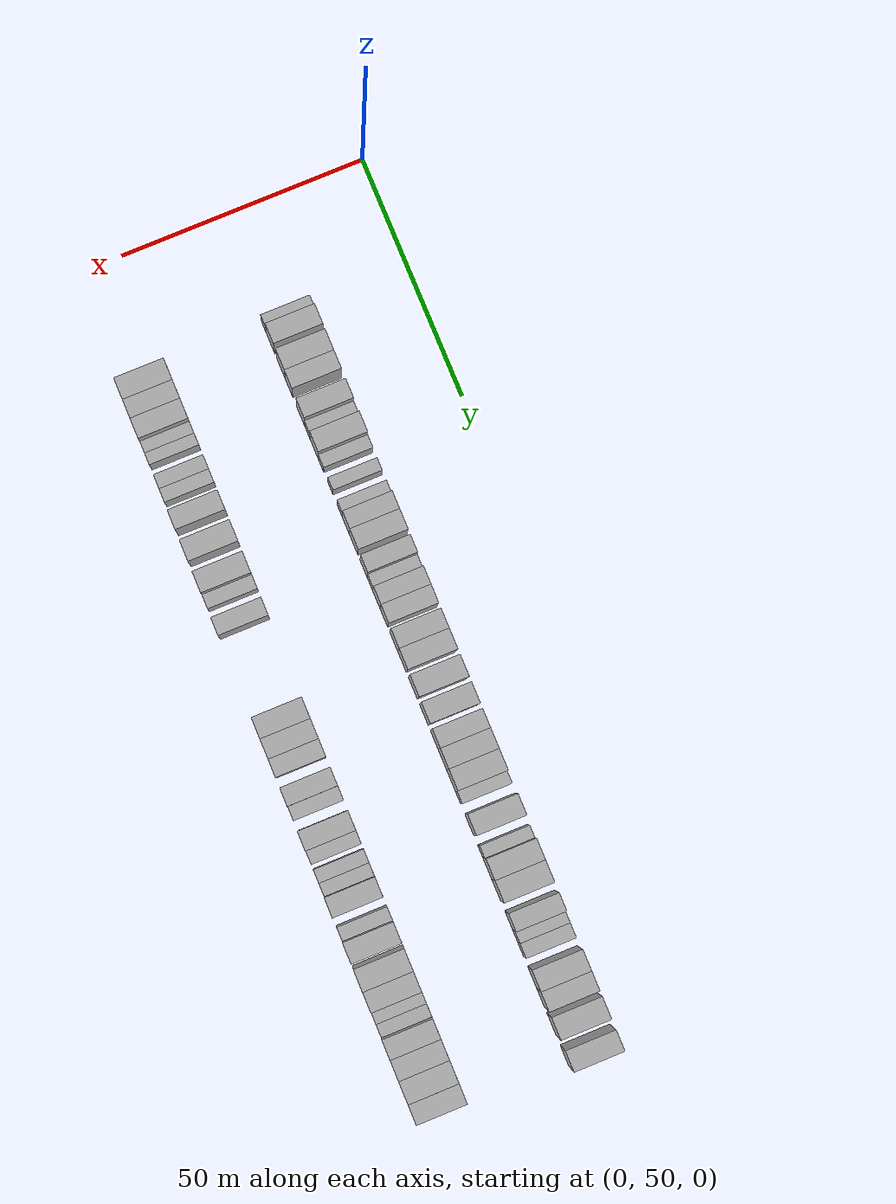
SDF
<sdf version="1.6">
 <world name="default">
  <model name="building_75">
   <static>1</static>
   <pose>25.0000 73.3830 0 0.000000 0.000000 0.000000</pose>
   <link name="link">
    <pose>0 0 3.00 0 0 0</pose>
    <collision name="collision"><geometry><box><size>10.0000 2.5653 6.0000</size></box></geometry></collision>
    <visual name="visual">
     <cast_shadows>0</cast_shadows>
     <geometry><box><size>10.0000 2.5653 6.0000</size></box></geometry>
     <material>
      <script>
       <uri>model://HANNAS_wall/materials/scripts</uri>
       <uri>model://HANNAS_wall/materials/textures</uri>
       <name>vrc/HANNAS_wall</name>
      </script>
     </material>
    </visual>
   </link>
  </model>
  <model name="building_76">
   <static>1</static>
   <pose>25.0000 76.7371 0 0.000000 0.000000 0.000000</pose>
   <link name="link">
    <pose>0 0 4.50 0 0 0</pose>
    <collision name="collision"><geometry><box><size>10.0000 4.1430 9.0000</size></box></geometry></collision>
    <visual name="visual">
     <cast_shadows>0</cast_shadows>
     <geometry><box><size>10.0000 4.1430 9.0000</size></box></geometry>
     <material>
      <script>
       <uri>model://HANNAS_wall/materials/scripts</uri>
       <uri>model://HANNAS_wall/materials/textures</uri>
       <name>vrc/HANNAS_wall</name>
      </script>
     </material>
    </visual>
   </link>
  </model>
  <model name="building_77">
   <static>1</static>
   <pose>25.0000 81.9905 0 0.000000 0.000000 0.000000</pose>
   <link name="link">
    <pose>0 0 4.50 0 0 0</pose>
    <collision name="collision"><geometry><box><size>10.0000 4.3637 9.0000</size></box></geometry></collision>
    <visual name="visual">
     <cast_shadows>0</cast_shadows>
     <geometry><box><size>10.0000 4.3637 9.0000</size></box></geometry>
     <material>
      <script>
       <uri>model://HANNAS_wall/materials/scripts</uri>
       <uri>model://HANNAS_wall/materials/textures</uri>
       <name>vrc/HANNAS_wall</name>
      </script>
     </material>
    </visual>
   </link>
  </model>
  <model name="building_78">
   <static>1</static>
   <pose>25.0000 86.0760 0 0.000000 0.000000 0.000000</pose>
   <link name="link">
    <pose>0 0 4.50 0 0 0</pose>
    <collision name="collision"><geometry><box><size>10.0000 3.8073 9.0000</size></box></geometry></collision>
    <visual name="visual">
     <cast_shadows>0</cast_shadows>
     <geometry><box><size>10.0000 3.8073 9.0000</size></box></geometry>
     <material>
      <script>
       <uri>model://HANNAS_wall/materials/scripts</uri>
       <uri>model://HANNAS_wall/materials/textures</uri>
       <name>vrc/HANNAS_wall</name>
      </script>
     </material>
    </visual>
   </link>
  </model>
  <model name="building_79">
   <static>1</static>
   <pose>25.0000 91.9814 0 0.000000 0.000000 0.000000</pose>
   <link name="link">
    <pose>0 0 4.50 0 0 0</pose>
    <collision name="collision"><geometry><box><size>10.0000 4.0036 9.0000</size></box></geometry></collision>
    <visual name="visual">
     <cast_shadows>0</cast_shadows>
     <geometry><box><size>10.0000 4.0036 9.0000</size></box></geometry>
     <material>
      <script>
       <uri>model://HANNAS_wall/materials/scripts</uri>
       <uri>model://HANNAS_wall/materials/textures</uri>
       <name>vrc/HANNAS_wall</name>
      </script>
     </material>
    </visual>
   </link>
  </model>
  <model name="building_80">
   <static>1</static>
   <pose>25.0000 95.3211 0 0.000000 0.000000 0.000000</pose>
   <link name="link">
    <pose>0 0 3.00 0 0 0</pose>
    <collision name="collision"><geometry><box><size>10.0000 2.6759 6.0000</size></box></geometry></collision>
    <visual name="visual">
     <cast_shadows>0</cast_shadows>
     <geometry><box><size>10.0000 2.6759 6.0000</size></box></geometry>
     <material>
      <script>
       <uri>model://HANNAS_wall/materials/scripts</uri>
       <uri>model://HANNAS_wall/materials/textures</uri>
       <name>vrc/HANNAS_wall</name>
      </script>
     </material>
    </visual>
   </link>
  </model>
  <model name="building_81">
   <static>1</static>
   <pose>25.0000 98.7745 0 0.000000 0.000000 0.000000</pose>
   <link name="link">
    <pose>0 0 4.50 0 0 0</pose>
    <collision name="collision"><geometry><box><size>10.0000 4.2308 9.0000</size></box></geometry></collision>
    <visual name="visual">
     <cast_shadows>0</cast_shadows>
     <geometry><box><size>10.0000 4.2308 9.0000</size></box></geometry>
     <material>
      <script>
       <uri>model://HANNAS_wall/materials/scripts</uri>
       <uri>model://HANNAS_wall/materials/textures</uri>
       <name>vrc/HANNAS_wall</name>
      </script>
     </material>
    </visual>
   </link>
  </model>
  <model name="building_82">
   <static>1</static>
   <pose>25.0000 102.2278 0 0.000000 0.000000 0.000000</pose>
   <link name="link">
    <pose>0 0 3.00 0 0 0</pose>
    <collision name="collision"><geometry><box><size>10.0000 2.6758 6.0000</size></box></geometry></collision>
    <visual name="visual">
     <cast_shadows>0</cast_shadows>
     <geometry><box><size>10.0000 2.6758 6.0000</size></box></geometry>
     <material>
      <script>
       <uri>model://HANNAS_wall/materials/scripts</uri>
       <uri>model://HANNAS_wall/materials/textures</uri>
       <name>vrc/HANNAS_wall</name>
      </script>
     </material>
    </visual>
   </link>
  </model>
  <model name="building_83">
   <static>1</static>
   <pose>25.0000 106.8657 0 0.000000 0.000000 0.000000</pose>
   <link name="link">
    <pose>0 0 3.00 0 0 0</pose>
    <collision name="collision"><geometry><box><size>10.0000 2.6001 6.0000</size></box></geometry></collision>
    <visual name="visual">
     <cast_shadows>0</cast_shadows>
     <geometry><box><size>10.0000 2.6001 6.0000</size></box></geometry>
     <material>
      <script>
       <uri>model://HANNAS_wall/materials/scripts</uri>
       <uri>model://HANNAS_wall/materials/textures</uri>
       <name>vrc/HANNAS_wall</name>
      </script>
     </material>
    </visual>
   </link>
  </model>
  <model name="building_84">
   <static>1</static>
   <pose>25.0000 111.4939 0 0.000000 0.000000 0.000000</pose>
   <link name="link">
    <pose>0 0 3.00 0 0 0</pose>
    <collision name="collision"><geometry><box><size>10.0000 2.6563 6.0000</size></box></geometry></collision>
    <visual name="visual">
     <cast_shadows>0</cast_shadows>
     <geometry><box><size>10.0000 2.6563 6.0000</size></box></geometry>
     <material>
      <script>
       <uri>model://HANNAS_wall/materials/scripts</uri>
       <uri>model://HANNAS_wall/materials/textures</uri>
       <name>vrc/HANNAS_wall</name>
      </script>
     </material>
    </visual>
   </link>
  </model>
  <model name="building_85">
   <static>1</static>
   <pose>25.0000 114.6298 0 0.000000 0.000000 0.000000</pose>
   <link name="link">
    <pose>0 0 4.50 0 0 0</pose>
    <collision name="collision"><geometry><box><size>10.0000 3.6155 9.0000</size></box></geometry></collision>
    <visual name="visual">
     <cast_shadows>0</cast_shadows>
     <geometry><box><size>10.0000 3.6155 9.0000</size></box></geometry>
     <material>
      <script>
       <uri>model://HANNAS_wall/materials/scripts</uri>
       <uri>model://HANNAS_wall/materials/textures</uri>
       <name>vrc/HANNAS_wall</name>
      </script>
     </material>
    </visual>
   </link>
  </model>
  <model name="building_86">
   <static>1</static>
   <pose>25.0000 118.5302 0 0.000000 0.000000 0.000000</pose>
   <link name="link">
    <pose>0 0 4.50 0 0 0</pose>
    <collision name="collision"><geometry><box><size>10.0000 4.1855 9.0000</size></box></geometry></collision>
    <visual name="visual">
     <cast_shadows>0</cast_shadows>
     <geometry><box><size>10.0000 4.1855 9.0000</size></box></geometry>
     <material>
      <script>
       <uri>model://HANNAS_wall/materials/scripts</uri>
       <uri>model://HANNAS_wall/materials/textures</uri>
       <name>vrc/HANNAS_wall</name>
      </script>
     </material>
    </visual>
   </link>
  </model>
  <model name="building_87">
   <static>1</static>
   <pose>25.0000 123.4294 0 0.000000 0.000000 0.000000</pose>
   <link name="link">
    <pose>0 0 4.50 0 0 0</pose>
    <collision name="collision"><geometry><box><size>10.0000 3.6129 9.0000</size></box></geometry></collision>
    <visual name="visual">
     <cast_shadows>0</cast_shadows>
     <geometry><box><size>10.0000 3.6129 9.0000</size></box></geometry>
     <material>
      <script>
       <uri>model://HANNAS_wall/materials/scripts</uri>
       <uri>model://HANNAS_wall/materials/textures</uri>
       <name>vrc/HANNAS_wall</name>
      </script>
     </material>
    </visual>
   </link>
  </model>
  <model name="building_88">
   <static>1</static>
   <pose>25.0000 126.6102 0 0.000000 0.000000 0.000000</pose>
   <link name="link">
    <pose>0 0 3.00 0 0 0</pose>
    <collision name="collision"><geometry><box><size>10.0000 2.7487 6.0000</size></box></geometry></collision>
    <visual name="visual">
     <cast_shadows>0</cast_shadows>
     <geometry><box><size>10.0000 2.7487 6.0000</size></box></geometry>
     <material>
      <script>
       <uri>model://HANNAS_wall/materials/scripts</uri>
       <uri>model://HANNAS_wall/materials/textures</uri>
       <name>vrc/HANNAS_wall</name>
      </script>
     </material>
    </visual>
   </link>
  </model>
  <model name="building_89">
   <static>1</static>
   <pose>25.0000 129.8097 0 0.000000 0.000000 0.000000</pose>
   <link name="link">
    <pose>0 0 4.50 0 0 0</pose>
    <collision name="collision"><geometry><box><size>10.0000 3.6504 9.0000</size></box></geometry></collision>
    <visual name="visual">
     <cast_shadows>0</cast_shadows>
     <geometry><box><size>10.0000 3.6504 9.0000</size></box></geometry>
     <material>
      <script>
       <uri>model://HANNAS_wall/materials/scripts</uri>
       <uri>model://HANNAS_wall/materials/textures</uri>
       <name>vrc/HANNAS_wall</name>
      </script>
     </material>
    </visual>
   </link>
  </model>
  <model name="building_90">
   <static>1</static>
   <pose>25.0000 133.5305 0 0.000000 0.000000 0.000000</pose>
   <link name="link">
    <pose>0 0 4.50 0 0 0</pose>
    <collision name="collision"><geometry><box><size>10.0000 3.7912 9.0000</size></box></geometry></collision>
    <visual name="visual">
     <cast_shadows>0</cast_shadows>
     <geometry><box><size>10.0000 3.7912 9.0000</size></box></geometry>
     <material>
      <script>
       <uri>model://HANNAS_wall/materials/scripts</uri>
       <uri>model://HANNAS_wall/materials/textures</uri>
       <name>vrc/HANNAS_wall</name>
      </script>
     </material>
    </visual>
   </link>
  </model>
  <model name="building_91">
   <static>1</static>
   <pose>25.0000 138.4261 0 0.000000 0.000000 0.000000</pose>
   <link name="link">
    <pose>0 0 4.50 0 0 0</pose>
    <collision name="collision"><geometry><box><size>10.0000 4.0001 9.0000</size></box></geometry></collision>
    <visual name="visual">
     <cast_shadows>0</cast_shadows>
     <geometry><box><size>10.0000 4.0001 9.0000</size></box></geometry>
     <material>
      <script>
       <uri>model://HANNAS_wall/materials/scripts</uri>
       <uri>model://HANNAS_wall/materials/textures</uri>
       <name>vrc/HANNAS_wall</name>
      </script>
     </material>
    </visual>
   </link>
  </model>
  <model name="building_92">
   <static>1</static>
   <pose>25.0000 142.5372 0 0.000000 0.000000 0.000000</pose>
   <link name="link">
    <pose>0 0 4.50 0 0 0</pose>
    <collision name="collision"><geometry><box><size>10.0000 4.2221 9.0000</size></box></geometry></collision>
    <visual name="visual">
     <cast_shadows>0</cast_shadows>
     <geometry><box><size>10.0000 4.2221 9.0000</size></box></geometry>
     <material>
      <script>
       <uri>model://HANNAS_wall/materials/scripts</uri>
       <uri>model://HANNAS_wall/materials/textures</uri>
       <name>vrc/HANNAS_wall</name>
      </script>
     </material>
    </visual>
   </link>
  </model>
  <model name="building_93">
   <static>1</static>
   <pose>25.0000 147.8774 0 0.000000 0.000000 0.000000</pose>
   <link name="link">
    <pose>0 0 4.50 0 0 0</pose>
    <collision name="collision"><geometry><box><size>10.0000 4.4584 9.0000</size></box></geometry></collision>
    <visual name="visual">
     <cast_shadows>0</cast_shadows>
     <geometry><box><size>10.0000 4.4584 9.0000</size></box></geometry>
     <material>
      <script>
       <uri>model://HANNAS_wall/materials/scripts</uri>
       <uri>model://HANNAS_wall/materials/textures</uri>
       <name>vrc/HANNAS_wall</name>
      </script>
     </material>
    </visual>
   </link>
  </model>
  <model name="building_94">
   <static>1</static>
   <pose>25.0000 153.2588 0 0.000000 0.000000 0.000000</pose>
   <link name="link">
    <pose>0 0 4.50 0 0 0</pose>
    <collision name="collision"><geometry><box><size>10.0000 4.3043 9.0000</size></box></geometry></collision>
    <visual name="visual">
     <cast_shadows>0</cast_shadows>
     <geometry><box><size>10.0000 4.3043 9.0000</size></box></geometry>
     <material>
      <script>
       <uri>model://HANNAS_wall/materials/scripts</uri>
       <uri>model://HANNAS_wall/materials/textures</uri>
       <name>vrc/HANNAS_wall</name>
      </script>
     </material>
    </visual>
   </link>
  </model>
  <model name="building_95">
   <static>1</static>
   <pose>25.0000 158.3328 0 0.000000 0.000000 0.000000</pose>
   <link name="link">
    <pose>0 0 4.50 0 0 0</pose>
    <collision name="collision"><geometry><box><size>10.0000 3.8437 9.0000</size></box></geometry></collision>
    <visual name="visual">
     <cast_shadows>0</cast_shadows>
     <geometry><box><size>10.0000 3.8437 9.0000</size></box></geometry>
     <material>
      <script>
       <uri>model://HANNAS_wall/materials/scripts</uri>
       <uri>model://HANNAS_wall/materials/textures</uri>
       <name>vrc/HANNAS_wall</name>
      </script>
     </material>
    </visual>
   </link>
  </model>
  <model name="building_96">
   <static>1</static>
   <pose>25.0000 162.3115 0 0.000000 0.000000 0.000000</pose>
   <link name="link">
    <pose>0 0 4.50 0 0 0</pose>
    <collision name="collision"><geometry><box><size>10.0000 4.1136 9.0000</size></box></geometry></collision>
    <visual name="visual">
     <cast_shadows>0</cast_shadows>
     <geometry><box><size>10.0000 4.1136 9.0000</size></box></geometry>
     <material>
      <script>
       <uri>model://HANNAS_wall/materials/scripts</uri>
       <uri>model://HANNAS_wall/materials/textures</uri>
       <name>vrc/HANNAS_wall</name>
      </script>
     </material>
    </visual>
   </link>
  </model>
  <model name="building_97">
   <static>1</static>
   <pose>25.0000 166.5266 0 0.000000 0.000000 0.000000</pose>
   <link name="link">
    <pose>0 0 4.50 0 0 0</pose>
    <collision name="collision"><geometry><box><size>10.0000 4.3166 9.0000</size></box></geometry></collision>
    <visual name="visual">
     <cast_shadows>0</cast_shadows>
     <geometry><box><size>10.0000 4.3166 9.0000</size></box></geometry>
     <material>
      <script>
       <uri>model://HANNAS_wall/materials/scripts</uri>
       <uri>model://HANNAS_wall/materials/textures</uri>
       <name>vrc/HANNAS_wall</name>
      </script>
     </material>
    </visual>
   </link>
  </model>
  <model name="building_98">
   <static>1</static>
   <pose>25.0000 169.9686 0 0.000000 0.000000 0.000000</pose>
   <link name="link">
    <pose>0 0 3.00 0 0 0</pose>
    <collision name="collision"><geometry><box><size>10.0000 2.5674 6.0000</size></box></geometry></collision>
    <visual name="visual">
     <cast_shadows>0</cast_shadows>
     <geometry><box><size>10.0000 2.5674 6.0000</size></box></geometry>
     <material>
      <script>
       <uri>model://HANNAS_wall/materials/scripts</uri>
       <uri>model://HANNAS_wall/materials/textures</uri>
       <name>vrc/HANNAS_wall</name>
      </script>
     </material>
    </visual>
   </link>
  </model>
  <model name="building_99">
   <static>1</static>
   <pose>25.0000 175.3886 0 0.000000 0.000000 0.000000</pose>
   <link name="link">
    <pose>0 0 4.50 0 0 0</pose>
    <collision name="collision"><geometry><box><size>10.0000 4.2725 9.0000</size></box></geometry></collision>
    <visual name="visual">
     <cast_shadows>0</cast_shadows>
     <geometry><box><size>10.0000 4.2725 9.0000</size></box></geometry>
     <material>
      <script>
       <uri>model://HANNAS_wall/materials/scripts</uri>
       <uri>model://HANNAS_wall/materials/textures</uri>
       <name>vrc/HANNAS_wall</name>
      </script>
     </material>
    </visual>
   </link>
  </model>
  <model name="building_100">
   <static>1</static>
   <pose>25.0000 180.7821 0 0.000000 0.000000 0.000000</pose>
   <link name="link">
    <pose>0 0 3.00 0 0 0</pose>
    <collision name="collision"><geometry><box><size>10.0000 2.5145 6.0000</size></box></geometry></collision>
    <visual name="visual">
     <cast_shadows>0</cast_shadows>
     <geometry><box><size>10.0000 2.5145 6.0000</size></box></geometry>
     <material>
      <script>
       <uri>model://HANNAS_wall/materials/scripts</uri>
       <uri>model://HANNAS_wall/materials/textures</uri>
       <name>vrc/HANNAS_wall</name>
      </script>
     </material>
    </visual>
   </link>
  </model>
  <model name="building_101">
   <static>1</static>
   <pose>25.0000 184.1647 0 0.000000 0.000000 0.000000</pose>
   <link name="link">
    <pose>0 0 4.50 0 0 0</pose>
    <collision name="collision"><geometry><box><size>10.0000 4.2506 9.0000</size></box></geometry></collision>
    <visual name="visual">
     <cast_shadows>0</cast_shadows>
     <geometry><box><size>10.0000 4.2506 9.0000</size></box></geometry>
     <material>
      <script>
       <uri>model://HANNAS_wall/materials/scripts</uri>
       <uri>model://HANNAS_wall/materials/textures</uri>
       <name>vrc/HANNAS_wall</name>
      </script>
     </material>
    </visual>
   </link>
  </model>
  <model name="building_102">
   <static>1</static>
   <pose>25.0000 188.4905 0 0.000000 0.000000 0.000000</pose>
   <link name="link">
    <pose>0 0 4.50 0 0 0</pose>
    <collision name="collision"><geometry><box><size>10.0000 4.4011 9.0000</size></box></geometry></collision>
    <visual name="visual">
     <cast_shadows>0</cast_shadows>
     <geometry><box><size>10.0000 4.4011 9.0000</size></box></geometry>
     <material>
      <script>
       <uri>model://HANNAS_wall/materials/scripts</uri>
       <uri>model://HANNAS_wall/materials/textures</uri>
       <name>vrc/HANNAS_wall</name>
      </script>
     </material>
    </visual>
   </link>
  </model>
  <model name="building_103">
   <static>1</static>
   <pose>25.0000 194.5075 0 0.000000 0.000000 0.000000</pose>
   <link name="link">
    <pose>0 0 4.50 0 0 0</pose>
    <collision name="collision"><geometry><box><size>10.0000 3.6328 9.0000</size></box></geometry></collision>
    <visual name="visual">
     <cast_shadows>0</cast_shadows>
     <geometry><box><size>10.0000 3.6328 9.0000</size></box></geometry>
     <material>
      <script>
       <uri>model://HANNAS_wall/materials/scripts</uri>
       <uri>model://HANNAS_wall/materials/textures</uri>
       <name>vrc/HANNAS_wall</name>
      </script>
     </material>
    </visual>
   </link>
  </model>
  <model name="building_104">
   <static>1</static>
   <pose>25.0000 197.5601 0 0.000000 0.000000 0.000000</pose>
   <link name="link">
    <pose>0 0 3.00 0 0 0</pose>
    <collision name="collision"><geometry><box><size>10.0000 2.4725 6.0000</size></box></geometry></collision>
    <visual name="visual">
     <cast_shadows>0</cast_shadows>
     <geometry><box><size>10.0000 2.4725 6.0000</size></box></geometry>
     <material>
      <script>
       <uri>model://HANNAS_wall/materials/scripts</uri>
       <uri>model://HANNAS_wall/materials/textures</uri>
       <name>vrc/HANNAS_wall</name>
      </script>
     </material>
    </visual>
   </link>
  </model>
  <model name="building_105">
   <static>1</static>
   <pose>25.0000 200.2657 0 0.000000 0.000000 0.000000</pose>
   <link name="link">
    <pose>0 0 3.00 0 0 0</pose>
    <collision name="collision"><geometry><box><size>10.0000 2.9385 6.0000</size></box></geometry></collision>
    <visual name="visual">
     <cast_shadows>0</cast_shadows>
     <geometry><box><size>10.0000 2.9385 6.0000</size></box></geometry>
     <material>
      <script>
       <uri>model://HANNAS_wall/materials/scripts</uri>
       <uri>model://HANNAS_wall/materials/textures</uri>
       <name>vrc/HANNAS_wall</name>
      </script>
     </material>
    </visual>
   </link>
  </model>
  <model name="building_106">
   <static>1</static>
   <pose>25.0000 205.8491 0 0.000000 0.000000 0.000000</pose>
   <link name="link">
    <pose>0 0 4.50 0 0 0</pose>
    <collision name="collision"><geometry><box><size>10.0000 4.2284 9.0000</size></box></geometry></collision>
    <visual name="visual">
     <cast_shadows>0</cast_shadows>
     <geometry><box><size>10.0000 4.2284 9.0000</size></box></geometry>
     <material>
      <script>
       <uri>model://HANNAS_wall/materials/scripts</uri>
       <uri>model://HANNAS_wall/materials/textures</uri>
       <name>vrc/HANNAS_wall</name>
      </script>
     </material>
    </visual>
   </link>
  </model>
  <model name="building_107">
   <static>1</static>
   <pose>25.0000 209.9163 0 0.000000 0.000000 0.000000</pose>
   <link name="link">
    <pose>0 0 4.50 0 0 0</pose>
    <collision name="collision"><geometry><box><size>10.0000 3.9060 9.0000</size></box></geometry></collision>
    <visual name="visual">
     <cast_shadows>0</cast_shadows>
     <geometry><box><size>10.0000 3.9060 9.0000</size></box></geometry>
     <material>
      <script>
       <uri>model://HANNAS_wall/materials/scripts</uri>
       <uri>model://HANNAS_wall/materials/textures</uri>
       <name>vrc/HANNAS_wall</name>
      </script>
     </material>
    </visual>
   </link>
  </model>
  <model name="building_108">
   <static>1</static>
   <pose>25.0000 215.0913 0 0.000000 0.000000 0.000000</pose>
   <link name="link">
    <pose>0 0 4.50 0 0 0</pose>
    <collision name="collision"><geometry><box><size>10.0000 4.4439 9.0000</size></box></geometry></collision>
    <visual name="visual">
     <cast_shadows>0</cast_shadows>
     <geometry><box><size>10.0000 4.4439 9.0000</size></box></geometry>
     <material>
      <script>
       <uri>model://HANNAS_wall/materials/scripts</uri>
       <uri>model://HANNAS_wall/materials/textures</uri>
       <name>vrc/HANNAS_wall</name>
      </script>
     </material>
    </visual>
   </link>
  </model>
  <model name="building_109">
   <static>1</static>
   <pose>25.0000 221.3826 0 0.000000 0.000000 0.000000</pose>
   <link name="link">
    <pose>0 0 4.50 0 0 0</pose>
    <collision name="collision"><geometry><box><size>10.0000 4.1388 9.0000</size></box></geometry></collision>
    <visual name="visual">
     <cast_shadows>0</cast_shadows>
     <geometry><box><size>10.0000 4.1388 9.0000</size></box></geometry>
     <material>
      <script>
       <uri>model://HANNAS_wall/materials/scripts</uri>
       <uri>model://HANNAS_wall/materials/textures</uri>
       <name>vrc/HANNAS_wall</name>
      </script>
     </material>
    </visual>
   </link>
  </model>
  <model name="building_170">
   <static>1</static>
   <pose>55.0000 75.7506 0 0.000000 0.000000 0.000000</pose>
   <link name="link">
    <pose>0 0 4.50 0 0 0</pose>
    <collision name="collision"><geometry><box><size>10.0000 4.4068 9.0000</size></box></geometry></collision>
    <visual name="visual">
     <cast_shadows>0</cast_shadows>
     <geometry><box><size>10.0000 4.4068 9.0000</size></box></geometry>
     <material>
      <script>
       <uri>model://HANNAS_wall/materials/scripts</uri>
       <uri>model://HANNAS_wall/materials/textures</uri>
       <name>vrc/HANNAS_wall</name>
      </script>
     </material>
    </visual>
   </link>
  </model>
  <model name="building_171">
   <static>1</static>
   <pose>55.0000 79.8580 0 0.000000 0.000000 0.000000</pose>
   <link name="link">
    <pose>0 0 4.50 0 0 0</pose>
    <collision name="collision"><geometry><box><size>10.0000 3.8080 9.0000</size></box></geometry></collision>
    <visual name="visual">
     <cast_shadows>0</cast_shadows>
     <geometry><box><size>10.0000 3.8080 9.0000</size></box></geometry>
     <material>
      <script>
       <uri>model://HANNAS_wall/materials/scripts</uri>
       <uri>model://HANNAS_wall/materials/textures</uri>
       <name>vrc/HANNAS_wall</name>
      </script>
     </material>
    </visual>
   </link>
  </model>
  <model name="building_172">
   <static>1</static>
   <pose>55.0000 83.8267 0 0.000000 0.000000 0.000000</pose>
   <link name="link">
    <pose>0 0 4.50 0 0 0</pose>
    <collision name="collision"><geometry><box><size>10.0000 4.1295 9.0000</size></box></geometry></collision>
    <visual name="visual">
     <cast_shadows>0</cast_shadows>
     <geometry><box><size>10.0000 4.1295 9.0000</size></box></geometry>
     <material>
      <script>
       <uri>model://HANNAS_wall/materials/scripts</uri>
       <uri>model://HANNAS_wall/materials/textures</uri>
       <name>vrc/HANNAS_wall</name>
      </script>
     </material>
    </visual>
   </link>
  </model>
  <model name="building_173">
   <static>1</static>
   <pose>55.0000 87.0946 0 0.000000 0.000000 0.000000</pose>
   <link name="link">
    <pose>0 0 3.00 0 0 0</pose>
    <collision name="collision"><geometry><box><size>10.0000 2.4061 6.0000</size></box></geometry></collision>
    <visual name="visual">
     <cast_shadows>0</cast_shadows>
     <geometry><box><size>10.0000 2.4061 6.0000</size></box></geometry>
     <material>
      <script>
       <uri>model://HANNAS_wall/materials/scripts</uri>
       <uri>model://HANNAS_wall/materials/textures</uri>
       <name>vrc/HANNAS_wall</name>
      </script>
     </material>
    </visual>
   </link>
  </model>
  <model name="building_174">
   <static>1</static>
   <pose>55.0000 89.5083 0 0.000000 0.000000 0.000000</pose>
   <link name="link">
    <pose>0 0 3.00 0 0 0</pose>
    <collision name="collision"><geometry><box><size>10.0000 2.4214 6.0000</size></box></geometry></collision>
    <visual name="visual">
     <cast_shadows>0</cast_shadows>
     <geometry><box><size>10.0000 2.4214 6.0000</size></box></geometry>
     <material>
      <script>
       <uri>model://HANNAS_wall/materials/scripts</uri>
       <uri>model://HANNAS_wall/materials/textures</uri>
       <name>vrc/HANNAS_wall</name>
      </script>
     </material>
    </visual>
   </link>
  </model>
  <model name="building_175">
   <static>1</static>
   <pose>55.0000 94.1634 0 0.000000 0.000000 0.000000</pose>
   <link name="link">
    <pose>0 0 3.00 0 0 0</pose>
    <collision name="collision"><geometry><box><size>10.0000 2.8890 6.0000</size></box></geometry></collision>
    <visual name="visual">
     <cast_shadows>0</cast_shadows>
     <geometry><box><size>10.0000 2.8890 6.0000</size></box></geometry>
     <material>
      <script>
       <uri>model://HANNAS_wall/materials/scripts</uri>
       <uri>model://HANNAS_wall/materials/textures</uri>
       <name>vrc/HANNAS_wall</name>
      </script>
     </material>
    </visual>
   </link>
  </model>
  <model name="building_176">
   <static>1</static>
   <pose>55.0000 96.9859 0 0.000000 0.000000 0.000000</pose>
   <link name="link">
    <pose>0 0 3.00 0 0 0</pose>
    <collision name="collision"><geometry><box><size>10.0000 2.7561 6.0000</size></box></geometry></collision>
    <visual name="visual">
     <cast_shadows>0</cast_shadows>
     <geometry><box><size>10.0000 2.7561 6.0000</size></box></geometry>
     <material>
      <script>
       <uri>model://HANNAS_wall/materials/scripts</uri>
       <uri>model://HANNAS_wall/materials/textures</uri>
       <name>vrc/HANNAS_wall</name>
      </script>
     </material>
    </visual>
   </link>
  </model>
  <model name="building_177">
   <static>1</static>
   <pose>55.0000 102.3590 0 0.000000 0.000000 0.000000</pose>
   <link name="link">
    <pose>0 0 4.50 0 0 0</pose>
    <collision name="collision"><geometry><box><size>10.0000 3.9900 9.0000</size></box></geometry></collision>
    <visual name="visual">
     <cast_shadows>0</cast_shadows>
     <geometry><box><size>10.0000 3.9900 9.0000</size></box></geometry>
     <material>
      <script>
       <uri>model://HANNAS_wall/materials/scripts</uri>
       <uri>model://HANNAS_wall/materials/textures</uri>
       <name>vrc/HANNAS_wall</name>
      </script>
     </material>
    </visual>
   </link>
  </model>
  <model name="building_178">
   <static>1</static>
   <pose>55.0000 108.5398 0 0.000000 0.000000 0.000000</pose>
   <link name="link">
    <pose>0 0 4.50 0 0 0</pose>
    <collision name="collision"><geometry><box><size>10.0000 4.3716 9.0000</size></box></geometry></collision>
    <visual name="visual">
     <cast_shadows>0</cast_shadows>
     <geometry><box><size>10.0000 4.3716 9.0000</size></box></geometry>
     <material>
      <script>
       <uri>model://HANNAS_wall/materials/scripts</uri>
       <uri>model://HANNAS_wall/materials/textures</uri>
       <name>vrc/HANNAS_wall</name>
      </script>
     </material>
    </visual>
   </link>
  </model>
  <model name="building_179">
   <static>1</static>
   <pose>55.0000 114.9017 0 0.000000 0.000000 0.000000</pose>
   <link name="link">
    <pose>0 0 4.50 0 0 0</pose>
    <collision name="collision"><geometry><box><size>10.0000 4.3521 9.0000</size></box></geometry></collision>
    <visual name="visual">
     <cast_shadows>0</cast_shadows>
     <geometry><box><size>10.0000 4.3521 9.0000</size></box></geometry>
     <material>
      <script>
       <uri>model://HANNAS_wall/materials/scripts</uri>
       <uri>model://HANNAS_wall/materials/textures</uri>
       <name>vrc/HANNAS_wall</name>
      </script>
     </material>
    </visual>
   </link>
  </model>
  <model name="building_180">
   <static>1</static>
   <pose>55.0000 118.5197 0 0.000000 0.000000 0.000000</pose>
   <link name="link">
    <pose>0 0 3.00 0 0 0</pose>
    <collision name="collision"><geometry><box><size>10.0000 2.8839 6.0000</size></box></geometry></collision>
    <visual name="visual">
     <cast_shadows>0</cast_shadows>
     <geometry><box><size>10.0000 2.8839 6.0000</size></box></geometry>
     <material>
      <script>
       <uri>model://HANNAS_wall/materials/scripts</uri>
       <uri>model://HANNAS_wall/materials/textures</uri>
       <name>vrc/HANNAS_wall</name>
      </script>
     </material>
    </visual>
   </link>
  </model>
  <model name="building_181">
   <static>1</static>
   <pose>55.0000 123.7840 0 0.000000 0.000000 0.000000</pose>
   <link name="link">
    <pose>0 0 4.50 0 0 0</pose>
    <collision name="collision"><geometry><box><size>10.0000 3.6446 9.0000</size></box></geometry></collision>
    <visual name="visual">
     <cast_shadows>0</cast_shadows>
     <geometry><box><size>10.0000 3.6446 9.0000</size></box></geometry>
     <material>
      <script>
       <uri>model://HANNAS_wall/materials/scripts</uri>
       <uri>model://HANNAS_wall/materials/textures</uri>
       <name>vrc/HANNAS_wall</name>
      </script>
     </material>
    </visual>
   </link>
  </model>
  <model name="building_182">
   <static>1</static>
   <pose>55.0000 144.0167 0 0.000000 0.000000 0.000000</pose>
   <link name="link">
    <pose>0 0 4.50 0 0 0</pose>
    <collision name="collision"><geometry><box><size>10.0000 4.2736 9.0000</size></box></geometry></collision>
    <visual name="visual">
     <cast_shadows>0</cast_shadows>
     <geometry><box><size>10.0000 4.2736 9.0000</size></box></geometry>
     <material>
      <script>
       <uri>model://HANNAS_wall/materials/scripts</uri>
       <uri>model://HANNAS_wall/materials/textures</uri>
       <name>vrc/HANNAS_wall</name>
      </script>
     </material>
    </visual>
   </link>
  </model>
  <model name="building_183">
   <static>1</static>
   <pose>55.0000 148.1546 0 0.000000 0.000000 0.000000</pose>
   <link name="link">
    <pose>0 0 4.50 0 0 0</pose>
    <collision name="collision"><geometry><box><size>10.0000 4.0021 9.0000</size></box></geometry></collision>
    <visual name="visual">
     <cast_shadows>0</cast_shadows>
     <geometry><box><size>10.0000 4.0021 9.0000</size></box></geometry>
     <material>
      <script>
       <uri>model://HANNAS_wall/materials/scripts</uri>
       <uri>model://HANNAS_wall/materials/textures</uri>
       <name>vrc/HANNAS_wall</name>
      </script>
     </material>
    </visual>
   </link>
  </model>
  <model name="building_184">
   <static>1</static>
   <pose>55.0000 151.9681 0 0.000000 0.000000 0.000000</pose>
   <link name="link">
    <pose>0 0 4.50 0 0 0</pose>
    <collision name="collision"><geometry><box><size>10.0000 3.6249 9.0000</size></box></geometry></collision>
    <visual name="visual">
     <cast_shadows>0</cast_shadows>
     <geometry><box><size>10.0000 3.6249 9.0000</size></box></geometry>
     <material>
      <script>
       <uri>model://HANNAS_wall/materials/scripts</uri>
       <uri>model://HANNAS_wall/materials/textures</uri>
       <name>vrc/HANNAS_wall</name>
      </script>
     </material>
    </visual>
   </link>
  </model>
  <model name="building_185">
   <static>1</static>
   <pose>55.0000 157.6346 0 0.000000 0.000000 0.000000</pose>
   <link name="link">
    <pose>0 0 4.50 0 0 0</pose>
    <collision name="collision"><geometry><box><size>10.0000 3.7082 9.0000</size></box></geometry></collision>
    <visual name="visual">
     <cast_shadows>0</cast_shadows>
     <geometry><box><size>10.0000 3.7082 9.0000</size></box></geometry>
     <material>
      <script>
       <uri>model://HANNAS_wall/materials/scripts</uri>
       <uri>model://HANNAS_wall/materials/textures</uri>
       <name>vrc/HANNAS_wall</name>
      </script>
     </material>
    </visual>
   </link>
  </model>
  <model name="building_186">
   <static>1</static>
   <pose>55.0000 160.9161 0 0.000000 0.000000 0.000000</pose>
   <link name="link">
    <pose>0 0 3.00 0 0 0</pose>
    <collision name="collision"><geometry><box><size>10.0000 2.8547 6.0000</size></box></geometry></collision>
    <visual name="visual">
     <cast_shadows>0</cast_shadows>
     <geometry><box><size>10.0000 2.8547 6.0000</size></box></geometry>
     <material>
      <script>
       <uri>model://HANNAS_wall/materials/scripts</uri>
       <uri>model://HANNAS_wall/materials/textures</uri>
       <name>vrc/HANNAS_wall</name>
      </script>
     </material>
    </visual>
   </link>
  </model>
  <model name="building_187">
   <static>1</static>
   <pose>55.0000 166.2978 0 0.000000 0.000000 0.000000</pose>
   <link name="link">
    <pose>0 0 4.50 0 0 0</pose>
    <collision name="collision"><geometry><box><size>10.0000 3.9087 9.0000</size></box></geometry></collision>
    <visual name="visual">
     <cast_shadows>0</cast_shadows>
     <geometry><box><size>10.0000 3.9087 9.0000</size></box></geometry>
     <material>
      <script>
       <uri>model://HANNAS_wall/materials/scripts</uri>
       <uri>model://HANNAS_wall/materials/textures</uri>
       <name>vrc/HANNAS_wall</name>
      </script>
     </material>
    </visual>
   </link>
  </model>
  <model name="building_188">
   <static>1</static>
   <pose>55.0000 169.6269 0 0.000000 0.000000 0.000000</pose>
   <link name="link">
    <pose>0 0 3.00 0 0 0</pose>
    <collision name="collision"><geometry><box><size>10.0000 2.7495 6.0000</size></box></geometry></collision>
    <visual name="visual">
     <cast_shadows>0</cast_shadows>
     <geometry><box><size>10.0000 2.7495 6.0000</size></box></geometry>
     <material>
      <script>
       <uri>model://HANNAS_wall/materials/scripts</uri>
       <uri>model://HANNAS_wall/materials/textures</uri>
       <name>vrc/HANNAS_wall</name>
      </script>
     </material>
    </visual>
   </link>
  </model>
  <model name="building_189">
   <static>1</static>
   <pose>55.0000 173.3489 0 0.000000 0.000000 0.000000</pose>
   <link name="link">
    <pose>0 0 3.00 0 0 0</pose>
    <collision name="collision"><geometry><box><size>10.0000 2.6947 6.0000</size></box></geometry></collision>
    <visual name="visual">
     <cast_shadows>0</cast_shadows>
     <geometry><box><size>10.0000 2.6947 6.0000</size></box></geometry>
     <material>
      <script>
       <uri>model://HANNAS_wall/materials/scripts</uri>
       <uri>model://HANNAS_wall/materials/textures</uri>
       <name>vrc/HANNAS_wall</name>
      </script>
     </material>
    </visual>
   </link>
  </model>
  <model name="building_190">
   <static>1</static>
   <pose>55.0000 176.0161 0 0.000000 0.000000 0.000000</pose>
   <link name="link">
    <pose>0 0 3.00 0 0 0</pose>
    <collision name="collision"><geometry><box><size>10.0000 2.6396 6.0000</size></box></geometry></collision>
    <visual name="visual">
     <cast_shadows>0</cast_shadows>
     <geometry><box><size>10.0000 2.6396 6.0000</size></box></geometry>
     <material>
      <script>
       <uri>model://HANNAS_wall/materials/scripts</uri>
       <uri>model://HANNAS_wall/materials/textures</uri>
       <name>vrc/HANNAS_wall</name>
      </script>
     </material>
    </visual>
   </link>
  </model>
  <model name="building_191">
   <static>1</static>
   <pose>55.0000 179.3352 0 0.000000 0.000000 0.000000</pose>
   <link name="link">
    <pose>0 0 4.50 0 0 0</pose>
    <collision name="collision"><geometry><box><size>10.0000 3.9988 9.0000</size></box></geometry></collision>
    <visual name="visual">
     <cast_shadows>0</cast_shadows>
     <geometry><box><size>10.0000 3.9988 9.0000</size></box></geometry>
     <material>
      <script>
       <uri>model://HANNAS_wall/materials/scripts</uri>
       <uri>model://HANNAS_wall/materials/textures</uri>
       <name>vrc/HANNAS_wall</name>
      </script>
     </material>
    </visual>
   </link>
  </model>
  <model name="building_192">
   <static>1</static>
   <pose>55.0000 184.7195 0 0.000000 0.000000 0.000000</pose>
   <link name="link">
    <pose>0 0 3.00 0 0 0</pose>
    <collision name="collision"><geometry><box><size>10.0000 2.7699 6.0000</size></box></geometry></collision>
    <visual name="visual">
     <cast_shadows>0</cast_shadows>
     <geometry><box><size>10.0000 2.7699 6.0000</size></box></geometry>
     <material>
      <script>
       <uri>model://HANNAS_wall/materials/scripts</uri>
       <uri>model://HANNAS_wall/materials/textures</uri>
       <name>vrc/HANNAS_wall</name>
      </script>
     </material>
    </visual>
   </link>
  </model>
  <model name="building_193">
   <static>1</static>
   <pose>55.0000 188.2101 0 0.000000 0.000000 0.000000</pose>
   <link name="link">
    <pose>0 0 4.50 0 0 0</pose>
    <collision name="collision"><geometry><box><size>10.0000 4.2113 9.0000</size></box></geometry></collision>
    <visual name="visual">
     <cast_shadows>0</cast_shadows>
     <geometry><box><size>10.0000 4.2113 9.0000</size></box></geometry>
     <material>
      <script>
       <uri>model://HANNAS_wall/materials/scripts</uri>
       <uri>model://HANNAS_wall/materials/textures</uri>
       <name>vrc/HANNAS_wall</name>
      </script>
     </material>
    </visual>
   </link>
  </model>
  <model name="building_194">
   <static>1</static>
   <pose>55.0000 193.5423 0 0.000000 0.000000 0.000000</pose>
   <link name="link">
    <pose>0 0 4.50 0 0 0</pose>
    <collision name="collision"><geometry><box><size>10.0000 4.4532 9.0000</size></box></geometry></collision>
    <visual name="visual">
     <cast_shadows>0</cast_shadows>
     <geometry><box><size>10.0000 4.4532 9.0000</size></box></geometry>
     <material>
      <script>
       <uri>model://HANNAS_wall/materials/scripts</uri>
       <uri>model://HANNAS_wall/materials/textures</uri>
       <name>vrc/HANNAS_wall</name>
      </script>
     </material>
    </visual>
   </link>
  </model>
  <model name="building_195">
   <static>1</static>
   <pose>55.0000 197.7829 0 0.000000 0.000000 0.000000</pose>
   <link name="link">
    <pose>0 0 4.50 0 0 0</pose>
    <collision name="collision"><geometry><box><size>10.0000 4.0278 9.0000</size></box></geometry></collision>
    <visual name="visual">
     <cast_shadows>0</cast_shadows>
     <geometry><box><size>10.0000 4.0278 9.0000</size></box></geometry>
     <material>
      <script>
       <uri>model://HANNAS_wall/materials/scripts</uri>
       <uri>model://HANNAS_wall/materials/textures</uri>
       <name>vrc/HANNAS_wall</name>
      </script>
     </material>
    </visual>
   </link>
  </model>
  <model name="building_196">
   <static>1</static>
   <pose>55.0000 201.0607 0 0.000000 0.000000 0.000000</pose>
   <link name="link">
    <pose>0 0 3.00 0 0 0</pose>
    <collision name="collision"><geometry><box><size>10.0000 2.5280 6.0000</size></box></geometry></collision>
    <visual name="visual">
     <cast_shadows>0</cast_shadows>
     <geometry><box><size>10.0000 2.5280 6.0000</size></box></geometry>
     <material>
      <script>
       <uri>model://HANNAS_wall/materials/scripts</uri>
       <uri>model://HANNAS_wall/materials/textures</uri>
       <name>vrc/HANNAS_wall</name>
      </script>
     </material>
    </visual>
   </link>
  </model>
  <model name="building_197">
   <static>1</static>
   <pose>55.0000 203.6247 0 0.000000 0.000000 0.000000</pose>
   <link name="link">
    <pose>0 0 3.00 0 0 0</pose>
    <collision name="collision"><geometry><box><size>10.0000 2.6000 6.0000</size></box></geometry></collision>
    <visual name="visual">
     <cast_shadows>0</cast_shadows>
     <geometry><box><size>10.0000 2.6000 6.0000</size></box></geometry>
     <material>
      <script>
       <uri>model://HANNAS_wall/materials/scripts</uri>
       <uri>model://HANNAS_wall/materials/textures</uri>
       <name>vrc/HANNAS_wall</name>
      </script>
     </material>
    </visual>
   </link>
  </model>
  <model name="building_198">
   <static>1</static>
   <pose>55.0000 206.9084 0 0.000000 0.000000 0.000000</pose>
   <link name="link">
    <pose>0 0 4.50 0 0 0</pose>
    <collision name="collision"><geometry><box><size>10.0000 3.9673 9.0000</size></box></geometry></collision>
    <visual name="visual">
     <cast_shadows>0</cast_shadows>
     <geometry><box><size>10.0000 3.9673 9.0000</size></box></geometry>
     <material>
      <script>
       <uri>model://HANNAS_wall/materials/scripts</uri>
       <uri>model://HANNAS_wall/materials/textures</uri>
       <name>vrc/HANNAS_wall</name>
      </script>
     </material>
    </visual>
   </link>
  </model>
  <model name="building_199">
   <static>1</static>
   <pose>55.0000 210.9278 0 0.000000 0.000000 0.000000</pose>
   <link name="link">
    <pose>0 0 4.50 0 0 0</pose>
    <collision name="collision"><geometry><box><size>10.0000 4.0716 9.0000</size></box></geometry></collision>
    <visual name="visual">
     <cast_shadows>0</cast_shadows>
     <geometry><box><size>10.0000 4.0716 9.0000</size></box></geometry>
     <material>
      <script>
       <uri>model://HANNAS_wall/materials/scripts</uri>
       <uri>model://HANNAS_wall/materials/textures</uri>
       <name>vrc/HANNAS_wall</name>
      </script>
     </material>
    </visual>
   </link>
  </model>
  <model name="building_200">
   <static>1</static>
   <pose>55.0000 215.1995 0 0.000000 0.000000 0.000000</pose>
   <link name="link">
    <pose>0 0 4.50 0 0 0</pose>
    <collision name="collision"><geometry><box><size>10.0000 4.4719 9.0000</size></box></geometry></collision>
    <visual name="visual">
     <cast_shadows>0</cast_shadows>
     <geometry><box><size>10.0000 4.4719 9.0000</size></box></geometry>
     <material>
      <script>
       <uri>model://HANNAS_wall/materials/scripts</uri>
       <uri>model://HANNAS_wall/materials/textures</uri>
       <name>vrc/HANNAS_wall</name>
      </script>
     </material>
    </visual>
   </link>
  </model>
  <model name="building_201">
   <static>1</static>
   <pose>55.0000 219.4063 0 0.000000 0.000000 0.000000</pose>
   <link name="link">
    <pose>0 0 4.50 0 0 0</pose>
    <collision name="collision"><geometry><box><size>10.0000 3.9416 9.0000</size></box></geometry></collision>
    <visual name="visual">
     <cast_shadows>0</cast_shadows>
     <geometry><box><size>10.0000 3.9416 9.0000</size></box></geometry>
     <material>
      <script>
       <uri>model://HANNAS_wall/materials/scripts</uri>
       <uri>model://HANNAS_wall/materials/textures</uri>
       <name>vrc/HANNAS_wall</name>
      </script>
     </material>
    </visual>
   </link>
  </model>
 </world>
</sdf>
